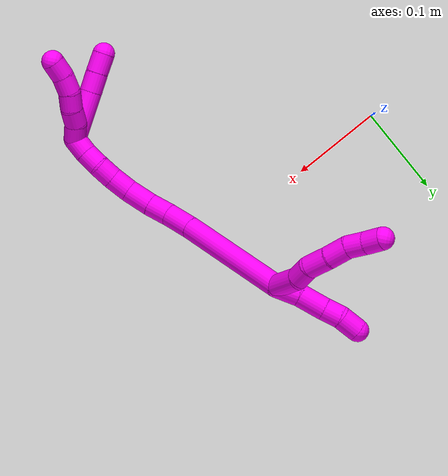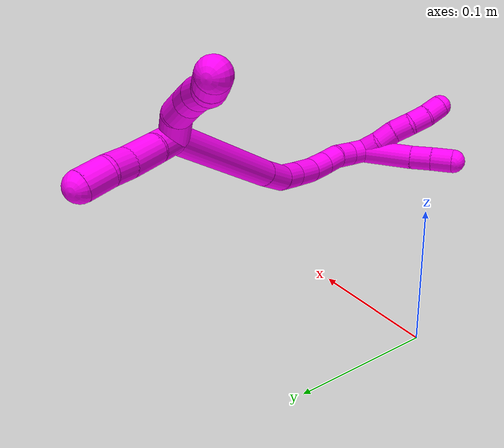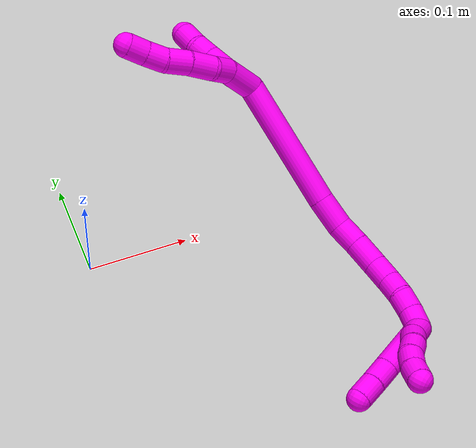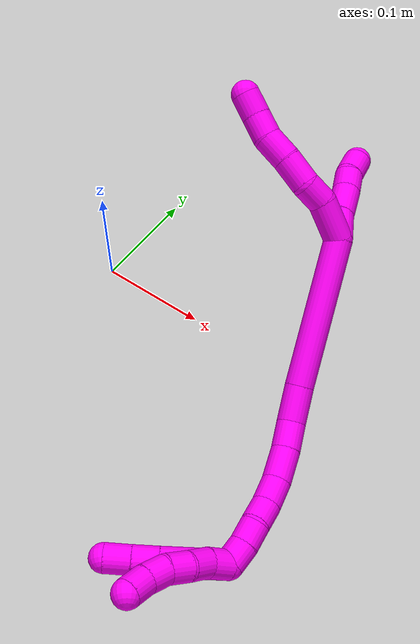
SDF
<sdf version="1.7">
 <world name="default">
  <model name="10">
   <static>0</static>
   <link name="10">
    <collision name="collision-cylinder-e_1_2_8">
     <pose>-0.003453 0.014426 -0.010387 -2.19481 -0.191867 0.371391</pose>
     <geometry><cylinder><radius>0.0125</radius><length>0.036218</length></cylinder></geometry>
     <surface>
      <friction><ode><mu>1.16</mu><mu2>1.16</mu2><slip1>0</slip1><slip2>0</slip2></ode></friction>
      <contact><ode><kp>1e+06</kp><kd>1</kd><max_vel>0</max_vel><min_depth>0.001</min_depth></ode></contact>
     </surface>
    </collision>
    <visual name="visual-cylinder-e_1_2_8">
     <pose>-0.003453 0.014426 -0.010387 -2.19481 -0.191867 0.371391</pose>
     <geometry><cylinder><radius>0.0125</radius><length>0.036218</length></cylinder></geometry>
     <material><ambient>1 0 0.964706 1</ambient></material>
    </visual>
    <collision name="collision-cylinder-e_2_8_9">
     <pose>-0.012193 0.036951 -0.025195 -2.0705 -0.520363 0.843433</pose>
     <geometry><cylinder><radius>0.0125</radius><length>0.021267</length></cylinder></geometry>
     <surface>
      <friction><ode><mu>1.16</mu><mu2>1.16</mu2><slip1>0</slip1><slip2>0</slip2></ode></friction>
      <contact><ode><kp>1e+06</kp><kd>1</kd><max_vel>0</max_vel><min_depth>0.001</min_depth></ode></contact>
     </surface>
    </collision>
    <visual name="visual-cylinder-e_2_8_9">
     <pose>-0.012193 0.036951 -0.025195 -2.0705 -0.520363 0.843433</pose>
     <geometry><cylinder><radius>0.0125</radius><length>0.021267</length></cylinder></geometry>
     <material><ambient>1 0 0.964706 1</ambient></material>
    </visual>
    <collision name="collision-cylinder-e_3_9_10">
     <pose>-0.023367 0.052526 -0.038781 -2.45728 -0.461746 1.16672</pose>
     <geometry><cylinder><radius>0.0125</radius><length>0.026424</length></cylinder></geometry>
     <surface>
      <friction><ode><mu>1.16</mu><mu2>1.16</mu2><slip1>0</slip1><slip2>0</slip2></ode></friction>
      <contact><ode><kp>1e+06</kp><kd>1</kd><max_vel>0</max_vel><min_depth>0.001</min_depth></ode></contact>
     </surface>
    </collision>
    <visual name="visual-cylinder-e_3_9_10">
     <pose>-0.023367 0.052526 -0.038781 -2.45728 -0.461746 1.16672</pose>
     <geometry><cylinder><radius>0.0125</radius><length>0.026424</length></cylinder></geometry>
     <material><ambient>1 0 0.964706 1</ambient></material>
    </visual>
    <collision name="collision-cylinder-e_4_10_11">
     <pose>-0.035709 0.065949 -0.056492 -2.53373 -0.555118 1.47484</pose>
     <geometry><cylinder><radius>0.0125</radius><length>0.0245</length></cylinder></geometry>
     <surface>
      <friction><ode><mu>1.16</mu><mu2>1.16</mu2><slip1>0</slip1><slip2>0</slip2></ode></friction>
      <contact><ode><kp>1e+06</kp><kd>1</kd><max_vel>0</max_vel><min_depth>0.001</min_depth></ode></contact>
     </surface>
    </collision>
    <visual name="visual-cylinder-e_4_10_11">
     <pose>-0.035709 0.065949 -0.056492 -2.53373 -0.555118 1.47484</pose>
     <geometry><cylinder><radius>0.0125</radius><length>0.0245</length></cylinder></geometry>
     <material><ambient>1 0 0.964706 1</ambient></material>
    </visual>
    <collision name="collision-cylinder-e_5_11_12">
     <pose>-0.045256 0.076861 -0.073689 -2.62053 -0.300454 1.0328</pose>
     <geometry><cylinder><radius>0.0125</radius><length>0.020887</length></cylinder></geometry>
     <surface>
      <friction><ode><mu>1.16</mu><mu2>1.16</mu2><slip1>0</slip1><slip2>0</slip2></ode></friction>
      <contact><ode><kp>1e+06</kp><kd>1</kd><max_vel>0</max_vel><min_depth>0.001</min_depth></ode></contact>
     </surface>
    </collision>
    <visual name="visual-cylinder-e_5_11_12">
     <pose>-0.045256 0.076861 -0.073689 -2.62053 -0.300454 1.0328</pose>
     <geometry><cylinder><radius>0.0125</radius><length>0.020887</length></cylinder></geometry>
     <material><ambient>1 0 0.964706 1</ambient></material>
    </visual>
    <collision name="collision-cylinder-e_6_12_6">
     <pose>-0.05125 0.087818 -0.090268 -2.49442 -0.284202 0.806417</pose>
     <geometry><cylinder><radius>0.0125</radius><length>0.020703</length></cylinder></geometry>
     <surface>
      <friction><ode><mu>1.16</mu><mu2>1.16</mu2><slip1>0</slip1><slip2>0</slip2></ode></friction>
      <contact><ode><kp>1e+06</kp><kd>1</kd><max_vel>0</max_vel><min_depth>0.001</min_depth></ode></contact>
     </surface>
    </collision>
    <visual name="visual-cylinder-e_6_12_6">
     <pose>-0.05125 0.087818 -0.090268 -2.49442 -0.284202 0.806417</pose>
     <geometry><cylinder><radius>0.0125</radius><length>0.020703</length></cylinder></geometry>
     <material><ambient>1 0 0.964706 1</ambient></material>
    </visual>
    <collision name="collision-cylinder-e_1_2_13">
     <pose>0.001796 -0.0006 -0.013156 3.09598 0.135561 2.49328</pose>
     <geometry><cylinder><radius>0.0125</radius><length>0.026583</length></cylinder></geometry>
     <surface>
      <friction><ode><mu>1.16</mu><mu2>1.16</mu2><slip1>0</slip1><slip2>0</slip2></ode></friction>
      <contact><ode><kp>1e+06</kp><kd>1</kd><max_vel>0</max_vel><min_depth>0.001</min_depth></ode></contact>
     </surface>
    </collision>
    <visual name="visual-cylinder-e_1_2_13">
     <pose>0.001796 -0.0006 -0.013156 3.09598 0.135561 2.49328</pose>
     <geometry><cylinder><radius>0.0125</radius><length>0.026583</length></cylinder></geometry>
     <material><ambient>1 0 0.964706 1</ambient></material>
    </visual>
    <collision name="collision-cylinder-e_2_13_14">
     <pose>0.007469 -0.003577 -0.040732 2.97827 0.259278 2.0204</pose>
     <geometry><cylinder><radius>0.0125</radius><length>0.030241</length></cylinder></geometry>
     <surface>
      <friction><ode><mu>1.16</mu><mu2>1.16</mu2><slip1>0</slip1><slip2>0</slip2></ode></friction>
      <contact><ode><kp>1e+06</kp><kd>1</kd><max_vel>0</max_vel><min_depth>0.001</min_depth></ode></contact>
     </surface>
    </collision>
    <visual name="visual-cylinder-e_2_13_14">
     <pose>0.007469 -0.003577 -0.040732 2.97827 0.259278 2.0204</pose>
     <geometry><cylinder><radius>0.0125</radius><length>0.030241</length></cylinder></geometry>
     <material><ambient>1 0 0.964706 1</ambient></material>
    </visual>
    <collision name="collision-cylinder-e_3_14_15">
     <pose>0.013668 -0.006367 -0.064899 3.09923 0.233679 2.78443</pose>
     <geometry><cylinder><radius>0.0125</radius><length>0.020056</length></cylinder></geometry>
     <surface>
      <friction><ode><mu>1.16</mu><mu2>1.16</mu2><slip1>0</slip1><slip2>0</slip2></ode></friction>
      <contact><ode><kp>1e+06</kp><kd>1</kd><max_vel>0</max_vel><min_depth>0.001</min_depth></ode></contact>
     </surface>
    </collision>
    <visual name="visual-cylinder-e_3_14_15">
     <pose>0.013668 -0.006367 -0.064899 3.09923 0.233679 2.78443</pose>
     <geometry><cylinder><radius>0.0125</radius><length>0.020056</length></cylinder></geometry>
     <material><ambient>1 0 0.964706 1</ambient></material>
    </visual>
    <collision name="collision-cylinder-e_4_15_5">
     <pose>0.020198 -0.010127 -0.08488 2.82554 0.372532 1.73772</pose>
     <geometry><cylinder><radius>0.0125</radius><length>0.023121</length></cylinder></geometry>
     <surface>
      <friction><ode><mu>1.16</mu><mu2>1.16</mu2><slip1>0</slip1><slip2>0</slip2></ode></friction>
      <contact><ode><kp>1e+06</kp><kd>1</kd><max_vel>0</max_vel><min_depth>0.001</min_depth></ode></contact>
     </surface>
    </collision>
    <visual name="visual-cylinder-e_4_15_5">
     <pose>0.020198 -0.010127 -0.08488 2.82554 0.372532 1.73772</pose>
     <geometry><cylinder><radius>0.0125</radius><length>0.023121</length></cylinder></geometry>
     <material><ambient>1 0 0.964706 1</ambient></material>
    </visual>
    <collision name="collision-cylinder-e_1_2_16">
     <pose>-0.026716 -0.02642 0.053488 0.458786 -0.421048 -0.099712</pose>
     <geometry><cylinder><radius>0.0125</radius><length>0.130733</length></cylinder></geometry>
     <surface>
      <friction><ode><mu>1.16</mu><mu2>1.16</mu2><slip1>0</slip1><slip2>0</slip2></ode></friction>
      <contact><ode><kp>1e+06</kp><kd>1</kd><max_vel>0</max_vel><min_depth>0.001</min_depth></ode></contact>
     </surface>
    </collision>
    <visual name="visual-cylinder-e_1_2_16">
     <pose>-0.026716 -0.02642 0.053488 0.458786 -0.421048 -0.099712</pose>
     <geometry><cylinder><radius>0.0125</radius><length>0.130733</length></cylinder></geometry>
     <material><ambient>1 0 0.964706 1</ambient></material>
    </visual>
    <collision name="collision-cylinder-e_2_16_17">
     <pose>-0.059276 -0.058678 0.120699 0.402241 -0.373461 -0.076999</pose>
     <geometry><cylinder><radius>0.0125</radius><length>0.032033</length></cylinder></geometry>
     <surface>
      <friction><ode><mu>1.16</mu><mu2>1.16</mu2><slip1>0</slip1><slip2>0</slip2></ode></friction>
      <contact><ode><kp>1e+06</kp><kd>1</kd><max_vel>0</max_vel><min_depth>0.001</min_depth></ode></contact>
     </surface>
    </collision>
    <visual name="visual-cylinder-e_2_16_17">
     <pose>-0.059276 -0.058678 0.120699 0.402241 -0.373461 -0.076999</pose>
     <geometry><cylinder><radius>0.0125</radius><length>0.032033</length></cylinder></geometry>
     <material><ambient>1 0 0.964706 1</ambient></material>
    </visual>
    <collision name="collision-cylinder-e_3_17_18">
     <pose>-0.068728 -0.066069 0.146039 0.132918 -0.298613 -0.020023</pose>
     <geometry><cylinder><radius>0.0125</radius><length>0.024528</length></cylinder></geometry>
     <surface>
      <friction><ode><mu>1.16</mu><mu2>1.16</mu2><slip1>0</slip1><slip2>0</slip2></ode></friction>
      <contact><ode><kp>1e+06</kp><kd>1</kd><max_vel>0</max_vel><min_depth>0.001</min_depth></ode></contact>
     </surface>
    </collision>
    <visual name="visual-cylinder-e_3_17_18">
     <pose>-0.068728 -0.066069 0.146039 0.132918 -0.298613 -0.020023</pose>
     <geometry><cylinder><radius>0.0125</radius><length>0.024528</length></cylinder></geometry>
     <material><ambient>1 0 0.964706 1</ambient></material>
    </visual>
    <collision name="collision-cylinder-e_4_18_19">
     <pose>-0.077499 -0.068408 0.17111 0.058323 -0.365896 -0.010794</pose>
     <geometry><cylinder><radius>0.0125</radius><length>0.028862</length></cylinder></geometry>
     <surface>
      <friction><ode><mu>1.16</mu><mu2>1.16</mu2><slip1>0</slip1><slip2>0</slip2></ode></friction>
      <contact><ode><kp>1e+06</kp><kd>1</kd><max_vel>0</max_vel><min_depth>0.001</min_depth></ode></contact>
     </surface>
    </collision>
    <visual name="visual-cylinder-e_4_18_19">
     <pose>-0.077499 -0.068408 0.17111 0.058323 -0.365896 -0.010794</pose>
     <geometry><cylinder><radius>0.0125</radius><length>0.028862</length></cylinder></geometry>
     <material><ambient>1 0 0.964706 1</ambient></material>
    </visual>
    <collision name="collision-cylinder-e_5_19_20">
     <pose>-0.087342 -0.067481 0.195184 -0.159882 -0.410259 0.033332</pose>
     <geometry><cylinder><radius>0.0125</radius><length>0.023465</length></cylinder></geometry>
     <surface>
      <friction><ode><mu>1.16</mu><mu2>1.16</mu2><slip1>0</slip1><slip2>0</slip2></ode></friction>
      <contact><ode><kp>1e+06</kp><kd>1</kd><max_vel>0</max_vel><min_depth>0.001</min_depth></ode></contact>
     </surface>
    </collision>
    <visual name="visual-cylinder-e_5_19_20">
     <pose>-0.087342 -0.067481 0.195184 -0.159882 -0.410259 0.033332</pose>
     <geometry><cylinder><radius>0.0125</radius><length>0.023465</length></cylinder></geometry>
     <material><ambient>1 0 0.964706 1</ambient></material>
    </visual>
    <collision name="collision-cylinder-e_6_20_21">
     <pose>-0.096393 -0.063129 0.214457 -0.296108 -0.450309 0.068293</pose>
     <geometry><cylinder><radius>0.0125</radius><length>0.020091</length></cylinder></geometry>
     <surface>
      <friction><ode><mu>1.16</mu><mu2>1.16</mu2><slip1>0</slip1><slip2>0</slip2></ode></friction>
      <contact><ode><kp>1e+06</kp><kd>1</kd><max_vel>0</max_vel><min_depth>0.001</min_depth></ode></contact>
     </surface>
    </collision>
    <visual name="visual-cylinder-e_6_20_21">
     <pose>-0.096393 -0.063129 0.214457 -0.296108 -0.450309 0.068293</pose>
     <geometry><cylinder><radius>0.0125</radius><length>0.020091</length></cylinder></geometry>
     <material><ambient>1 0 0.964706 1</ambient></material>
    </visual>
    <collision name="collision-cylinder-e_7_21_22">
     <pose>-0.10599 -0.060116 0.231639 -0.04378 -0.549019 0.012331</pose>
     <geometry><cylinder><radius>0.0125</radius><length>0.020022</length></cylinder></geometry>
     <surface>
      <friction><ode><mu>1.16</mu><mu2>1.16</mu2><slip1>0</slip1><slip2>0</slip2></ode></friction>
      <contact><ode><kp>1e+06</kp><kd>1</kd><max_vel>0</max_vel><min_depth>0.001</min_depth></ode></contact>
     </surface>
    </collision>
    <visual name="visual-cylinder-e_7_21_22">
     <pose>-0.10599 -0.060116 0.231639 -0.04378 -0.549019 0.012331</pose>
     <geometry><cylinder><radius>0.0125</radius><length>0.020022</length></cylinder></geometry>
     <material><ambient>1 0 0.964706 1</ambient></material>
    </visual>
    <collision name="collision-cylinder-e_8_22_1">
     <pose>-0.117369 -0.058379 0.248104 -0.170115 -0.652789 0.057707</pose>
     <geometry><cylinder><radius>0.0125</radius><length>0.020266</length></cylinder></geometry>
     <surface>
      <friction><ode><mu>1.16</mu><mu2>1.16</mu2><slip1>0</slip1><slip2>0</slip2></ode></friction>
      <contact><ode><kp>1e+06</kp><kd>1</kd><max_vel>0</max_vel><min_depth>0.001</min_depth></ode></contact>
     </surface>
    </collision>
    <visual name="visual-cylinder-e_8_22_1">
     <pose>-0.117369 -0.058379 0.248104 -0.170115 -0.652789 0.057707</pose>
     <geometry><cylinder><radius>0.0125</radius><length>0.020266</length></cylinder></geometry>
     <material><ambient>1 0 0.964706 1</ambient></material>
    </visual>
    <collision name="collision-cylinder-e_1_1_23">
     <pose>-0.150126 -0.050497 0.25332 -1.96559 -1.31129 1.71331</pose>
     <geometry><cylinder><radius>0.0125</radius><length>0.055048</length></cylinder></geometry>
     <surface>
      <friction><ode><mu>1.16</mu><mu2>1.16</mu2><slip1>0</slip1><slip2>0</slip2></ode></friction>
      <contact><ode><kp>1e+06</kp><kd>1</kd><max_vel>0</max_vel><min_depth>0.001</min_depth></ode></contact>
     </surface>
    </collision>
    <visual name="visual-cylinder-e_1_1_23">
     <pose>-0.150126 -0.050497 0.25332 -1.96559 -1.31129 1.71331</pose>
     <geometry><cylinder><radius>0.0125</radius><length>0.055048</length></cylinder></geometry>
     <material><ambient>1 0 0.964706 1</ambient></material>
    </visual>
    <collision name="collision-cylinder-e_2_23_24">
     <pose>-0.18741 -0.040762 0.249585 -1.87759 -1.2649 1.57175</pose>
     <geometry><cylinder><radius>0.0125</radius><length>0.022402</length></cylinder></geometry>
     <surface>
      <friction><ode><mu>1.16</mu><mu2>1.16</mu2><slip1>0</slip1><slip2>0</slip2></ode></friction>
      <contact><ode><kp>1e+06</kp><kd>1</kd><max_vel>0</max_vel><min_depth>0.001</min_depth></ode></contact>
     </surface>
    </collision>
    <visual name="visual-cylinder-e_2_23_24">
     <pose>-0.18741 -0.040762 0.249585 -1.87759 -1.2649 1.57175</pose>
     <geometry><cylinder><radius>0.0125</radius><length>0.022402</length></cylinder></geometry>
     <material><ambient>1 0 0.964706 1</ambient></material>
    </visual>
    <collision name="collision-cylinder-e_3_24_4">
     <pose>-0.208869 -0.034511 0.247249 -1.98022 -1.273 1.68958</pose>
     <geometry><cylinder><radius>0.0125</radius><length>0.02255</length></cylinder></geometry>
     <surface>
      <friction><ode><mu>1.16</mu><mu2>1.16</mu2><slip1>0</slip1><slip2>0</slip2></ode></friction>
      <contact><ode><kp>1e+06</kp><kd>1</kd><max_vel>0</max_vel><min_depth>0.001</min_depth></ode></contact>
     </surface>
    </collision>
    <visual name="visual-cylinder-e_3_24_4">
     <pose>-0.208869 -0.034511 0.247249 -1.98022 -1.273 1.68958</pose>
     <geometry><cylinder><radius>0.0125</radius><length>0.02255</length></cylinder></geometry>
     <material><ambient>1 0 0.964706 1</ambient></material>
    </visual>
    <collision name="collision-cylinder-e_1_1_25">
     <pose>-0.130391 -0.049796 0.256881 -1.45447 -0.756953 0.680264</pose>
     <geometry><cylinder><radius>0.0125</radius><length>0.02</length></cylinder></geometry>
     <surface>
      <friction><ode><mu>1.16</mu><mu2>1.16</mu2><slip1>0</slip1><slip2>0</slip2></ode></friction>
      <contact><ode><kp>1e+06</kp><kd>1</kd><max_vel>0</max_vel><min_depth>0.001</min_depth></ode></contact>
     </surface>
    </collision>
    <visual name="visual-cylinder-e_1_1_25">
     <pose>-0.130391 -0.049796 0.256881 -1.45447 -0.756953 0.680264</pose>
     <geometry><cylinder><radius>0.0125</radius><length>0.02</length></cylinder></geometry>
     <material><ambient>1 0 0.964706 1</ambient></material>
    </visual>
    <collision name="collision-cylinder-e_2_25_26">
     <pose>-0.143002 -0.035158 0.261184 -1.13439 -0.611885 0.397114</pose>
     <geometry><cylinder><radius>0.0125</radius><length>0.02</length></cylinder></geometry>
     <surface>
      <friction><ode><mu>1.16</mu><mu2>1.16</mu2><slip1>0</slip1><slip2>0</slip2></ode></friction>
      <contact><ode><kp>1e+06</kp><kd>1</kd><max_vel>0</max_vel><min_depth>0.001</min_depth></ode></contact>
     </surface>
    </collision>
    <visual name="visual-cylinder-e_2_25_26">
     <pose>-0.143002 -0.035158 0.261184 -1.13439 -0.611885 0.397114</pose>
     <geometry><cylinder><radius>0.0125</radius><length>0.02</length></cylinder></geometry>
     <material><ambient>1 0 0.964706 1</ambient></material>
    </visual>
    <collision name="collision-cylinder-e_3_26_27">
     <pose>-0.155951 -0.021312 0.267248 -1.1859 -0.804555 0.558427</pose>
     <geometry><cylinder><radius>0.0125</radius><length>0.02</length></cylinder></geometry>
     <surface>
      <friction><ode><mu>1.16</mu><mu2>1.16</mu2><slip1>0</slip1><slip2>0</slip2></ode></friction>
      <contact><ode><kp>1e+06</kp><kd>1</kd><max_vel>0</max_vel><min_depth>0.001</min_depth></ode></contact>
     </surface>
    </collision>
    <visual name="visual-cylinder-e_3_26_27">
     <pose>-0.155951 -0.021312 0.267248 -1.1859 -0.804555 0.558427</pose>
     <geometry><cylinder><radius>0.0125</radius><length>0.02</length></cylinder></geometry>
     <material><ambient>1 0 0.964706 1</ambient></material>
    </visual>
    <collision name="collision-cylinder-e_4_27_28">
     <pose>-0.169734 -0.009412 0.275026 -0.813492 -0.717842 0.320453</pose>
     <geometry><cylinder><radius>0.0125</radius><length>0.02</length></cylinder></geometry>
     <surface>
      <friction><ode><mu>1.16</mu><mu2>1.16</mu2><slip1>0</slip1><slip2>0</slip2></ode></friction>
      <contact><ode><kp>1e+06</kp><kd>1</kd><max_vel>0</max_vel><min_depth>0.001</min_depth></ode></contact>
     </surface>
    </collision>
    <visual name="visual-cylinder-e_4_27_28">
     <pose>-0.169734 -0.009412 0.275026 -0.813492 -0.717842 0.320453</pose>
     <geometry><cylinder><radius>0.0125</radius><length>0.02</length></cylinder></geometry>
     <material><ambient>1 0 0.964706 1</ambient></material>
    </visual>
    <collision name="collision-cylinder-e_5_28_3">
     <pose>-0.181462 0.001587 0.286754 -0.700473 -0.541022 0.201911</pose>
     <geometry><cylinder><radius>0.0125</radius><length>0.02</length></cylinder></geometry>
     <surface>
      <friction><ode><mu>1.16</mu><mu2>1.16</mu2><slip1>0</slip1><slip2>0</slip2></ode></friction>
      <contact><ode><kp>1e+06</kp><kd>1</kd><max_vel>0</max_vel><min_depth>0.001</min_depth></ode></contact>
     </surface>
    </collision>
    <visual name="visual-cylinder-e_5_28_3">
     <pose>-0.181462 0.001587 0.286754 -0.700473 -0.541022 0.201911</pose>
     <geometry><cylinder><radius>0.0125</radius><length>0.02</length></cylinder></geometry>
     <material><ambient>1 0 0.964706 1</ambient></material>
    </visual>
    <collision name="collision-sphere-3">
     <pose>-0.186612 0.007112 0.293307 0 -0 0</pose>
     <geometry><sphere><radius>0.0125</radius></sphere></geometry>
     <surface>
      <friction><ode><mu>1.16</mu><mu2>1.16</mu2><slip1>0</slip1><slip2>0</slip2></ode></friction>
      <contact><ode><kp>1e+06</kp><kd>1</kd><max_vel>0</max_vel><min_depth>0.001</min_depth></ode></contact>
     </surface>
    </collision>
    <visual name="visual-sphere-3">
     <pose>-0.186612 0.007112 0.293307 0 -0 0</pose>
     <geometry><sphere><radius>0.0125</radius></sphere></geometry>
     <material><ambient>1 0 0.964706 1</ambient></material>
    </visual>
    <collision name="collision-sphere-28">
     <pose>-0.176312 -0.003938 0.2802 0 -0 0</pose>
     <geometry><sphere><radius>0.0125</radius></sphere></geometry>
     <surface>
      <friction><ode><mu>1.16</mu><mu2>1.16</mu2><slip1>0</slip1><slip2>0</slip2></ode></friction>
      <contact><ode><kp>1e+06</kp><kd>1</kd><max_vel>0</max_vel><min_depth>0.001</min_depth></ode></contact>
     </surface>
    </collision>
    <visual name="visual-sphere-28">
     <pose>-0.176312 -0.003938 0.2802 0 -0 0</pose>
     <geometry><sphere><radius>0.0125</radius></sphere></geometry>
     <material><ambient>1 0 0.964706 1</ambient></material>
    </visual>
    <collision name="collision-sphere-27">
     <pose>-0.163156 -0.014885 0.269851 0 -0 0</pose>
     <geometry><sphere><radius>0.0125</radius></sphere></geometry>
     <surface>
      <friction><ode><mu>1.16</mu><mu2>1.16</mu2><slip1>0</slip1><slip2>0</slip2></ode></friction>
      <contact><ode><kp>1e+06</kp><kd>1</kd><max_vel>0</max_vel><min_depth>0.001</min_depth></ode></contact>
     </surface>
    </collision>
    <visual name="visual-sphere-27">
     <pose>-0.163156 -0.014885 0.269851 0 -0 0</pose>
     <geometry><sphere><radius>0.0125</radius></sphere></geometry>
     <material><ambient>1 0 0.964706 1</ambient></material>
    </visual>
    <collision name="collision-sphere-26">
     <pose>-0.148746 -0.027739 0.264644 0 -0 0</pose>
     <geometry><sphere><radius>0.0125</radius></sphere></geometry>
     <surface>
      <friction><ode><mu>1.16</mu><mu2>1.16</mu2><slip1>0</slip1><slip2>0</slip2></ode></friction>
      <contact><ode><kp>1e+06</kp><kd>1</kd><max_vel>0</max_vel><min_depth>0.001</min_depth></ode></contact>
     </surface>
    </collision>
    <visual name="visual-sphere-26">
     <pose>-0.148746 -0.027739 0.264644 0 -0 0</pose>
     <geometry><sphere><radius>0.0125</radius></sphere></geometry>
     <material><ambient>1 0 0.964706 1</ambient></material>
    </visual>
    <collision name="collision-sphere-25">
     <pose>-0.137258 -0.042576 0.257724 0 -0 0</pose>
     <geometry><sphere><radius>0.0125</radius></sphere></geometry>
     <surface>
      <friction><ode><mu>1.16</mu><mu2>1.16</mu2><slip1>0</slip1><slip2>0</slip2></ode></friction>
      <contact><ode><kp>1e+06</kp><kd>1</kd><max_vel>0</max_vel><min_depth>0.001</min_depth></ode></contact>
     </surface>
    </collision>
    <visual name="visual-sphere-25">
     <pose>-0.137258 -0.042576 0.257724 0 -0 0</pose>
     <geometry><sphere><radius>0.0125</radius></sphere></geometry>
     <material><ambient>1 0 0.964706 1</ambient></material>
    </visual>
    <collision name="collision-sphere-4">
     <pose>-0.219648 -0.031477 0.245932 0 -0 0</pose>
     <geometry><sphere><radius>0.0125</radius></sphere></geometry>
     <surface>
      <friction><ode><mu>1.16</mu><mu2>1.16</mu2><slip1>0</slip1><slip2>0</slip2></ode></friction>
      <contact><ode><kp>1e+06</kp><kd>1</kd><max_vel>0</max_vel><min_depth>0.001</min_depth></ode></contact>
     </surface>
    </collision>
    <visual name="visual-sphere-4">
     <pose>-0.219648 -0.031477 0.245932 0 -0 0</pose>
     <geometry><sphere><radius>0.0125</radius></sphere></geometry>
     <material><ambient>1 0 0.964706 1</ambient></material>
    </visual>
    <collision name="collision-sphere-24">
     <pose>-0.198091 -0.037546 0.248566 0 -0 0</pose>
     <geometry><sphere><radius>0.0125</radius></sphere></geometry>
     <surface>
      <friction><ode><mu>1.16</mu><mu2>1.16</mu2><slip1>0</slip1><slip2>0</slip2></ode></friction>
      <contact><ode><kp>1e+06</kp><kd>1</kd><max_vel>0</max_vel><min_depth>0.001</min_depth></ode></contact>
     </surface>
    </collision>
    <visual name="visual-sphere-24">
     <pose>-0.198091 -0.037546 0.248566 0 -0 0</pose>
     <geometry><sphere><radius>0.0125</radius></sphere></geometry>
     <material><ambient>1 0 0.964706 1</ambient></material>
    </visual>
    <collision name="collision-sphere-23">
     <pose>-0.176728 -0.043978 0.250604 0 -0 0</pose>
     <geometry><sphere><radius>0.0125</radius></sphere></geometry>
     <surface>
      <friction><ode><mu>1.16</mu><mu2>1.16</mu2><slip1>0</slip1><slip2>0</slip2></ode></friction>
      <contact><ode><kp>1e+06</kp><kd>1</kd><max_vel>0</max_vel><min_depth>0.001</min_depth></ode></contact>
     </surface>
    </collision>
    <visual name="visual-sphere-23">
     <pose>-0.176728 -0.043978 0.250604 0 -0 0</pose>
     <geometry><sphere><radius>0.0125</radius></sphere></geometry>
     <material><ambient>1 0 0.964706 1</ambient></material>
    </visual>
    <collision name="collision-sphere-1">
     <pose>-0.123524 -0.057017 0.256037 0 -0 0</pose>
     <geometry><sphere><radius>0.0125</radius></sphere></geometry>
     <surface>
      <friction><ode><mu>1.16</mu><mu2>1.16</mu2><slip1>0</slip1><slip2>0</slip2></ode></friction>
      <contact><ode><kp>1e+06</kp><kd>1</kd><max_vel>0</max_vel><min_depth>0.001</min_depth></ode></contact>
     </surface>
    </collision>
    <visual name="visual-sphere-1">
     <pose>-0.123524 -0.057017 0.256037 0 -0 0</pose>
     <geometry><sphere><radius>0.0125</radius></sphere></geometry>
     <material><ambient>1 0 0.964706 1</ambient></material>
    </visual>
    <collision name="collision-sphere-22">
     <pose>-0.111214 -0.059742 0.24017 0 -0 0</pose>
     <geometry><sphere><radius>0.0125</radius></sphere></geometry>
     <surface>
      <friction><ode><mu>1.16</mu><mu2>1.16</mu2><slip1>0</slip1><slip2>0</slip2></ode></friction>
      <contact><ode><kp>1e+06</kp><kd>1</kd><max_vel>0</max_vel><min_depth>0.001</min_depth></ode></contact>
     </surface>
    </collision>
    <visual name="visual-sphere-22">
     <pose>-0.111214 -0.059742 0.24017 0 -0 0</pose>
     <geometry><sphere><radius>0.0125</radius></sphere></geometry>
     <material><ambient>1 0 0.964706 1</ambient></material>
    </visual>
    <collision name="collision-sphere-21">
     <pose>-0.100766 -0.06049 0.223107 0 -0 0</pose>
     <geometry><sphere><radius>0.0125</radius></sphere></geometry>
     <surface>
      <friction><ode><mu>1.16</mu><mu2>1.16</mu2><slip1>0</slip1><slip2>0</slip2></ode></friction>
      <contact><ode><kp>1e+06</kp><kd>1</kd><max_vel>0</max_vel><min_depth>0.001</min_depth></ode></contact>
     </surface>
    </collision>
    <visual name="visual-sphere-21">
     <pose>-0.100766 -0.06049 0.223107 0 -0 0</pose>
     <geometry><sphere><radius>0.0125</radius></sphere></geometry>
     <material><ambient>1 0 0.964706 1</ambient></material>
    </visual>
    <collision name="collision-sphere-12">
     <pose>-0.048347 0.081827 -0.082341 0 -0 0</pose>
     <geometry><sphere><radius>0.0125</radius></sphere></geometry>
     <surface>
      <friction><ode><mu>1.16</mu><mu2>1.16</mu2><slip1>0</slip1><slip2>0</slip2></ode></friction>
      <contact><ode><kp>1e+06</kp><kd>1</kd><max_vel>0</max_vel><min_depth>0.001</min_depth></ode></contact>
     </surface>
    </collision>
    <visual name="visual-sphere-12">
     <pose>-0.048347 0.081827 -0.082341 0 -0 0</pose>
     <geometry><sphere><radius>0.0125</radius></sphere></geometry>
     <material><ambient>1 0 0.964706 1</ambient></material>
    </visual>
    <collision name="collision-sphere-11">
     <pose>-0.042165 0.071895 -0.065037 0 -0 0</pose>
     <geometry><sphere><radius>0.0125</radius></sphere></geometry>
     <surface>
      <friction><ode><mu>1.16</mu><mu2>1.16</mu2><slip1>0</slip1><slip2>0</slip2></ode></friction>
      <contact><ode><kp>1e+06</kp><kd>1</kd><max_vel>0</max_vel><min_depth>0.001</min_depth></ode></contact>
     </surface>
    </collision>
    <visual name="visual-sphere-11">
     <pose>-0.042165 0.071895 -0.065037 0 -0 0</pose>
     <geometry><sphere><radius>0.0125</radius></sphere></geometry>
     <material><ambient>1 0 0.964706 1</ambient></material>
    </visual>
    <collision name="collision-sphere-10">
     <pose>-0.029253 0.060003 -0.047946 0 -0 0</pose>
     <geometry><sphere><radius>0.0125</radius></sphere></geometry>
     <surface>
      <friction><ode><mu>1.16</mu><mu2>1.16</mu2><slip1>0</slip1><slip2>0</slip2></ode></friction>
      <contact><ode><kp>1e+06</kp><kd>1</kd><max_vel>0</max_vel><min_depth>0.001</min_depth></ode></contact>
     </surface>
    </collision>
    <visual name="visual-sphere-10">
     <pose>-0.029253 0.060003 -0.047946 0 -0 0</pose>
     <geometry><sphere><radius>0.0125</radius></sphere></geometry>
     <material><ambient>1 0 0.964706 1</ambient></material>
    </visual>
    <collision name="collision-sphere-9">
     <pose>-0.017481 0.045049 -0.029616 0 -0 0</pose>
     <geometry><sphere><radius>0.0125</radius></sphere></geometry>
     <surface>
      <friction><ode><mu>1.16</mu><mu2>1.16</mu2><slip1>0</slip1><slip2>0</slip2></ode></friction>
      <contact><ode><kp>1e+06</kp><kd>1</kd><max_vel>0</max_vel><min_depth>0.001</min_depth></ode></contact>
     </surface>
    </collision>
    <visual name="visual-sphere-9">
     <pose>-0.017481 0.045049 -0.029616 0 -0 0</pose>
     <geometry><sphere><radius>0.0125</radius></sphere></geometry>
     <material><ambient>1 0 0.964706 1</ambient></material>
    </visual>
    <collision name="collision-sphere-2">
     <geometry><sphere><radius>0.0125</radius></sphere></geometry>
     <surface>
      <friction><ode><mu>1.16</mu><mu2>1.16</mu2><slip1>0</slip1><slip2>0</slip2></ode></friction>
      <contact><ode><kp>1e+06</kp><kd>1</kd><max_vel>0</max_vel><min_depth>0.001</min_depth></ode></contact>
     </surface>
    </collision>
    <visual name="visual-sphere-2">
     <geometry><sphere><radius>0.0125</radius></sphere></geometry>
     <material><ambient>1 0 0.964706 1</ambient></material>
    </visual>
    <collision name="collision-sphere-19">
     <pose>-0.082662 -0.069194 0.184563 0 -0 0</pose>
     <geometry><sphere><radius>0.0125</radius></sphere></geometry>
     <surface>
      <friction><ode><mu>1.16</mu><mu2>1.16</mu2><slip1>0</slip1><slip2>0</slip2></ode></friction>
      <contact><ode><kp>1e+06</kp><kd>1</kd><max_vel>0</max_vel><min_depth>0.001</min_depth></ode></contact>
     </surface>
    </collision>
    <visual name="visual-sphere-19">
     <pose>-0.082662 -0.069194 0.184563 0 -0 0</pose>
     <geometry><sphere><radius>0.0125</radius></sphere></geometry>
     <material><ambient>1 0 0.964706 1</ambient></material>
    </visual>
    <collision name="collision-sphere-8">
     <pose>-0.006906 0.028853 -0.020774 0 -0 0</pose>
     <geometry><sphere><radius>0.0125</radius></sphere></geometry>
     <surface>
      <friction><ode><mu>1.16</mu><mu2>1.16</mu2><slip1>0</slip1><slip2>0</slip2></ode></friction>
      <contact><ode><kp>1e+06</kp><kd>1</kd><max_vel>0</max_vel><min_depth>0.001</min_depth></ode></contact>
     </surface>
    </collision>
    <visual name="visual-sphere-8">
     <pose>-0.006906 0.028853 -0.020774 0 -0 0</pose>
     <geometry><sphere><radius>0.0125</radius></sphere></geometry>
     <material><ambient>1 0 0.964706 1</ambient></material>
    </visual>
    <collision name="collision-sphere-6">
     <pose>-0.054152 0.093809 -0.098196 0 -0 0</pose>
     <geometry><sphere><radius>0.0125</radius></sphere></geometry>
     <surface>
      <friction><ode><mu>1.16</mu><mu2>1.16</mu2><slip1>0</slip1><slip2>0</slip2></ode></friction>
      <contact><ode><kp>1e+06</kp><kd>1</kd><max_vel>0</max_vel><min_depth>0.001</min_depth></ode></contact>
     </surface>
    </collision>
    <visual name="visual-sphere-6">
     <pose>-0.054152 0.093809 -0.098196 0 -0 0</pose>
     <geometry><sphere><radius>0.0125</radius></sphere></geometry>
     <material><ambient>1 0 0.964706 1</ambient></material>
    </visual>
    <collision name="collision-sphere-13">
     <pose>0.003593 -0.001201 -0.026312 0 -0 0</pose>
     <geometry><sphere><radius>0.0125</radius></sphere></geometry>
     <surface>
      <friction><ode><mu>1.16</mu><mu2>1.16</mu2><slip1>0</slip1><slip2>0</slip2></ode></friction>
      <contact><ode><kp>1e+06</kp><kd>1</kd><max_vel>0</max_vel><min_depth>0.001</min_depth></ode></contact>
     </surface>
    </collision>
    <visual name="visual-sphere-13">
     <pose>0.003593 -0.001201 -0.026312 0 -0 0</pose>
     <geometry><sphere><radius>0.0125</radius></sphere></geometry>
     <material><ambient>1 0 0.964706 1</ambient></material>
    </visual>
    <collision name="collision-sphere-14">
     <pose>0.011346 -0.005954 -0.055153 0 -0 0</pose>
     <geometry><sphere><radius>0.0125</radius></sphere></geometry>
     <surface>
      <friction><ode><mu>1.16</mu><mu2>1.16</mu2><slip1>0</slip1><slip2>0</slip2></ode></friction>
      <contact><ode><kp>1e+06</kp><kd>1</kd><max_vel>0</max_vel><min_depth>0.001</min_depth></ode></contact>
     </surface>
    </collision>
    <visual name="visual-sphere-14">
     <pose>0.011346 -0.005954 -0.055153 0 -0 0</pose>
     <geometry><sphere><radius>0.0125</radius></sphere></geometry>
     <material><ambient>1 0 0.964706 1</ambient></material>
    </visual>
    <collision name="collision-sphere-15">
     <pose>0.01599 -0.00678 -0.074646 0 -0 0</pose>
     <geometry><sphere><radius>0.0125</radius></sphere></geometry>
     <surface>
      <friction><ode><mu>1.16</mu><mu2>1.16</mu2><slip1>0</slip1><slip2>0</slip2></ode></friction>
      <contact><ode><kp>1e+06</kp><kd>1</kd><max_vel>0</max_vel><min_depth>0.001</min_depth></ode></contact>
     </surface>
    </collision>
    <visual name="visual-sphere-15">
     <pose>0.01599 -0.00678 -0.074646 0 -0 0</pose>
     <geometry><sphere><radius>0.0125</radius></sphere></geometry>
     <material><ambient>1 0 0.964706 1</ambient></material>
    </visual>
    <collision name="collision-sphere-5">
     <pose>0.024405 -0.013473 -0.095114 0 -0 0</pose>
     <geometry><sphere><radius>0.0125</radius></sphere></geometry>
     <surface>
      <friction><ode><mu>1.16</mu><mu2>1.16</mu2><slip1>0</slip1><slip2>0</slip2></ode></friction>
      <contact><ode><kp>1e+06</kp><kd>1</kd><max_vel>0</max_vel><min_depth>0.001</min_depth></ode></contact>
     </surface>
    </collision>
    <visual name="visual-sphere-5">
     <pose>0.024405 -0.013473 -0.095114 0 -0 0</pose>
     <geometry><sphere><radius>0.0125</radius></sphere></geometry>
     <material><ambient>1 0 0.964706 1</ambient></material>
    </visual>
    <collision name="collision-sphere-16">
     <pose>-0.053433 -0.05284 0.106976 0 -0 0</pose>
     <geometry><sphere><radius>0.0125</radius></sphere></geometry>
     <surface>
      <friction><ode><mu>1.16</mu><mu2>1.16</mu2><slip1>0</slip1><slip2>0</slip2></ode></friction>
      <contact><ode><kp>1e+06</kp><kd>1</kd><max_vel>0</max_vel><min_depth>0.001</min_depth></ode></contact>
     </surface>
    </collision>
    <visual name="visual-sphere-16">
     <pose>-0.053433 -0.05284 0.106976 0 -0 0</pose>
     <geometry><sphere><radius>0.0125</radius></sphere></geometry>
     <material><ambient>1 0 0.964706 1</ambient></material>
    </visual>
    <collision name="collision-sphere-17">
     <pose>-0.06512 -0.064516 0.134421 0 -0 0</pose>
     <geometry><sphere><radius>0.0125</radius></sphere></geometry>
     <surface>
      <friction><ode><mu>1.16</mu><mu2>1.16</mu2><slip1>0</slip1><slip2>0</slip2></ode></friction>
      <contact><ode><kp>1e+06</kp><kd>1</kd><max_vel>0</max_vel><min_depth>0.001</min_depth></ode></contact>
     </surface>
    </collision>
    <visual name="visual-sphere-17">
     <pose>-0.06512 -0.064516 0.134421 0 -0 0</pose>
     <geometry><sphere><radius>0.0125</radius></sphere></geometry>
     <material><ambient>1 0 0.964706 1</ambient></material>
    </visual>
    <collision name="collision-sphere-18">
     <pose>-0.072336 -0.067623 0.157657 0 -0 0</pose>
     <geometry><sphere><radius>0.0125</radius></sphere></geometry>
     <surface>
      <friction><ode><mu>1.16</mu><mu2>1.16</mu2><slip1>0</slip1><slip2>0</slip2></ode></friction>
      <contact><ode><kp>1e+06</kp><kd>1</kd><max_vel>0</max_vel><min_depth>0.001</min_depth></ode></contact>
     </surface>
    </collision>
    <visual name="visual-sphere-18">
     <pose>-0.072336 -0.067623 0.157657 0 -0 0</pose>
     <geometry><sphere><radius>0.0125</radius></sphere></geometry>
     <material><ambient>1 0 0.964706 1</ambient></material>
    </visual>
    <collision name="collision-sphere-20">
     <pose>-0.092021 -0.065768 0.205806 0 -0 0</pose>
     <geometry><sphere><radius>0.0125</radius></sphere></geometry>
     <surface>
      <friction><ode><mu>1.16</mu><mu2>1.16</mu2><slip1>0</slip1><slip2>0</slip2></ode></friction>
      <contact><ode><kp>1e+06</kp><kd>1</kd><max_vel>0</max_vel><min_depth>0.001</min_depth></ode></contact>
     </surface>
    </collision>
    <visual name="visual-sphere-20">
     <pose>-0.092021 -0.065768 0.205806 0 -0 0</pose>
     <geometry><sphere><radius>0.0125</radius></sphere></geometry>
     <material><ambient>1 0 0.964706 1</ambient></material>
    </visual>
    <inertial>
     <pose>-0.07127 -0.018227 0.104551 0 -0 0</pose>
     <mass>0.75</mass>
     <inertia>
      <ixx>0.000178</ixx>
      <ixy>0</ixy>
      <ixz>0</ixz>
      <iyy>0.00023</iyy>
      <iyz>0</iyz>
      <izz>0.000178</izz>
     </inertia>
    </inertial>
   </link>
   <pose>0.199805 0.077791 0.10892 1.61591 -0.244719 0.657945</pose>
  </model>
 </world>
</sdf>
